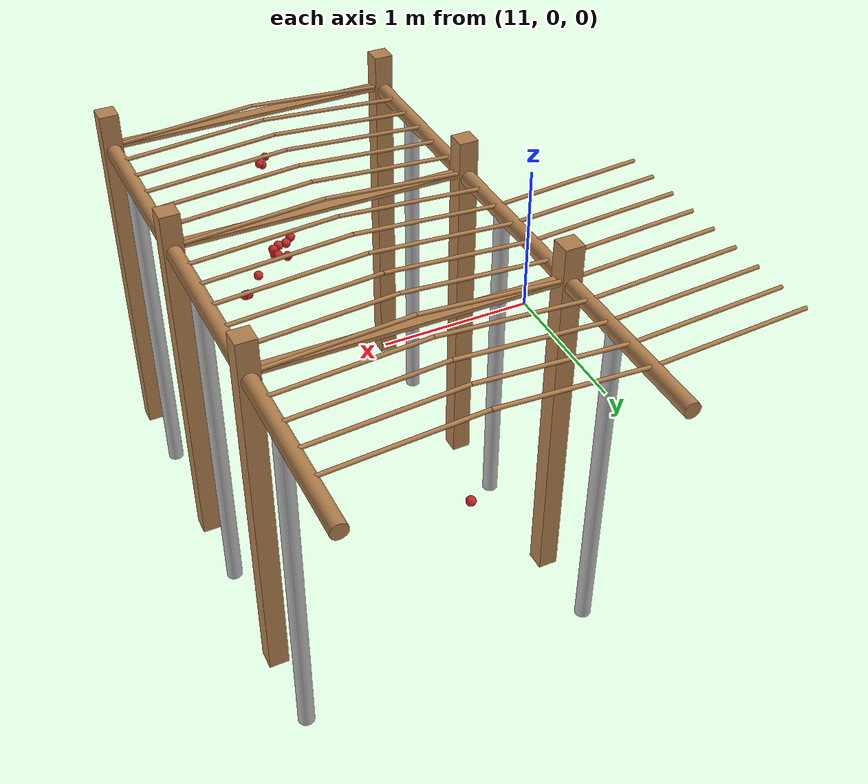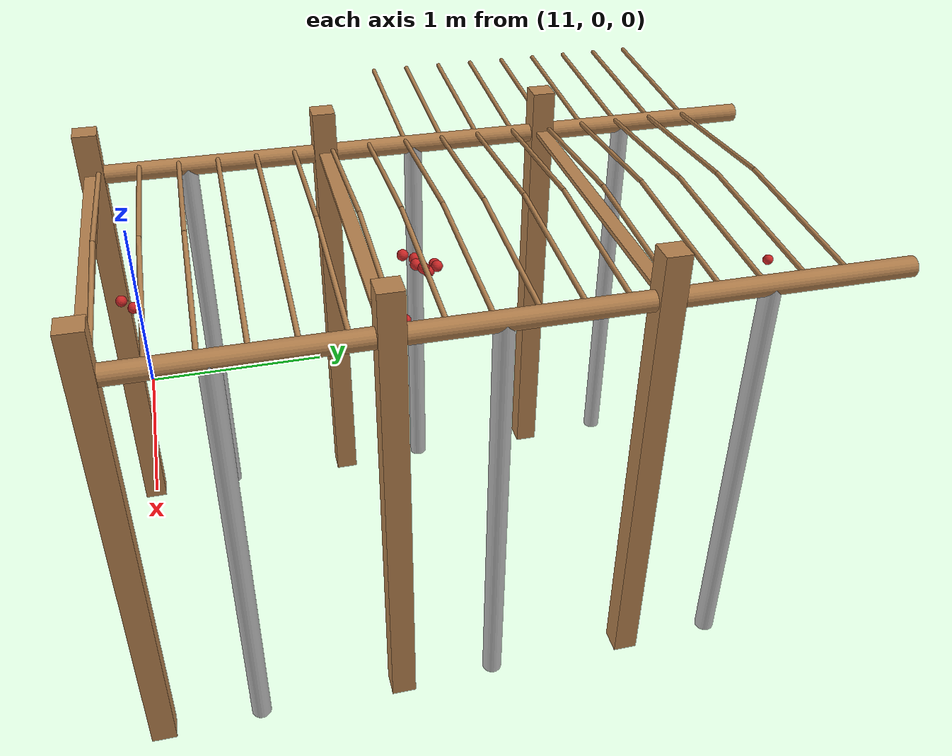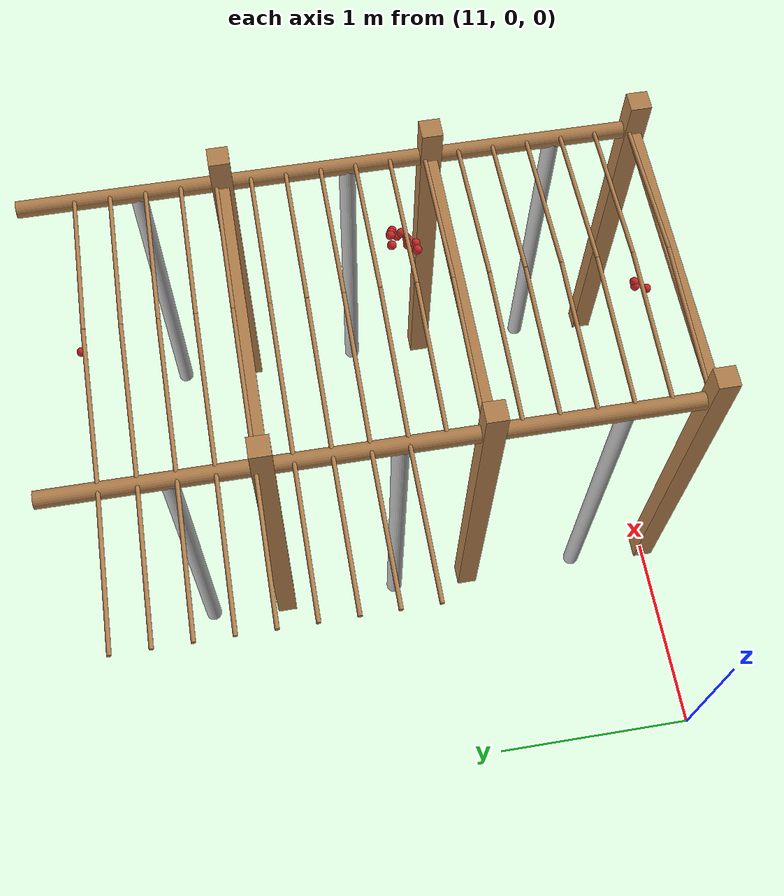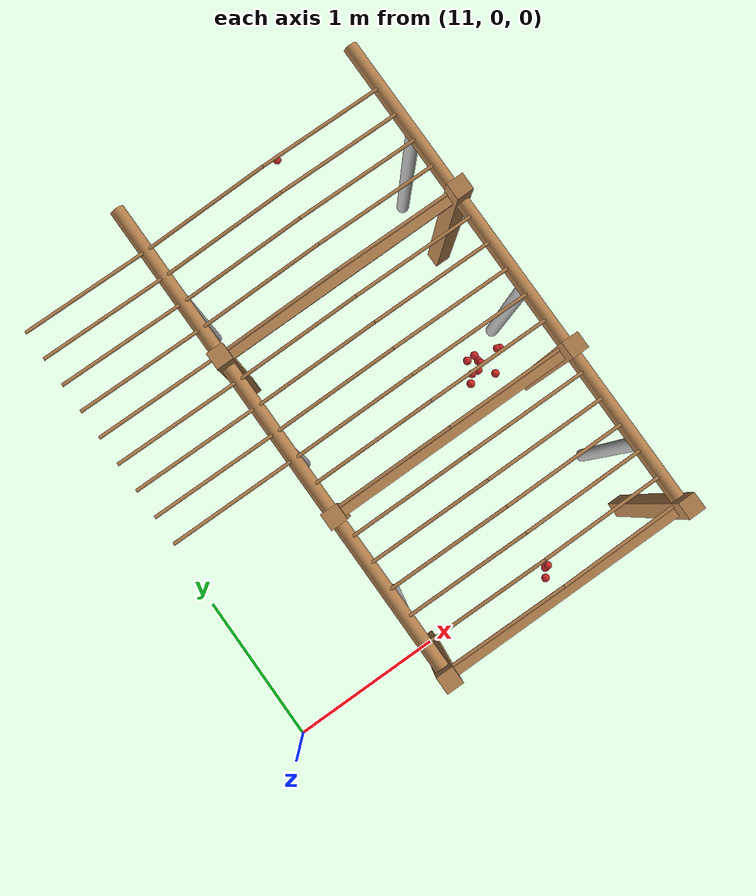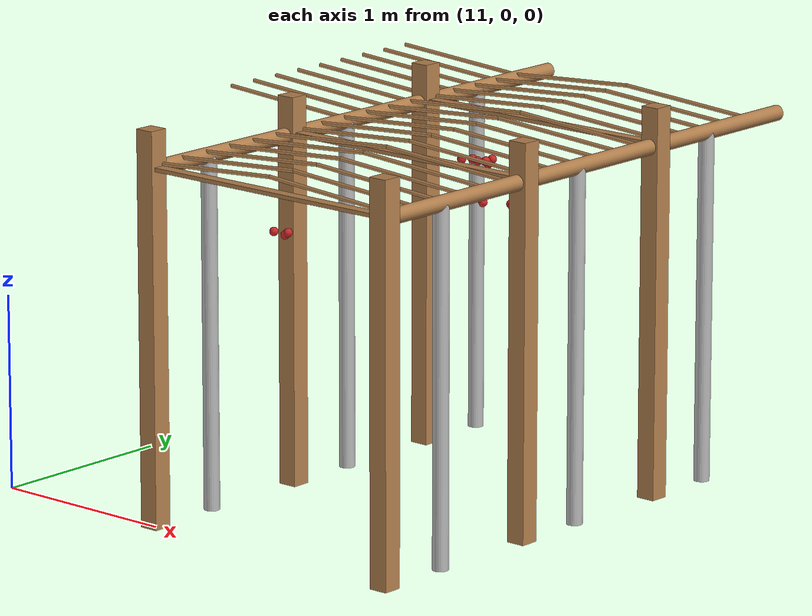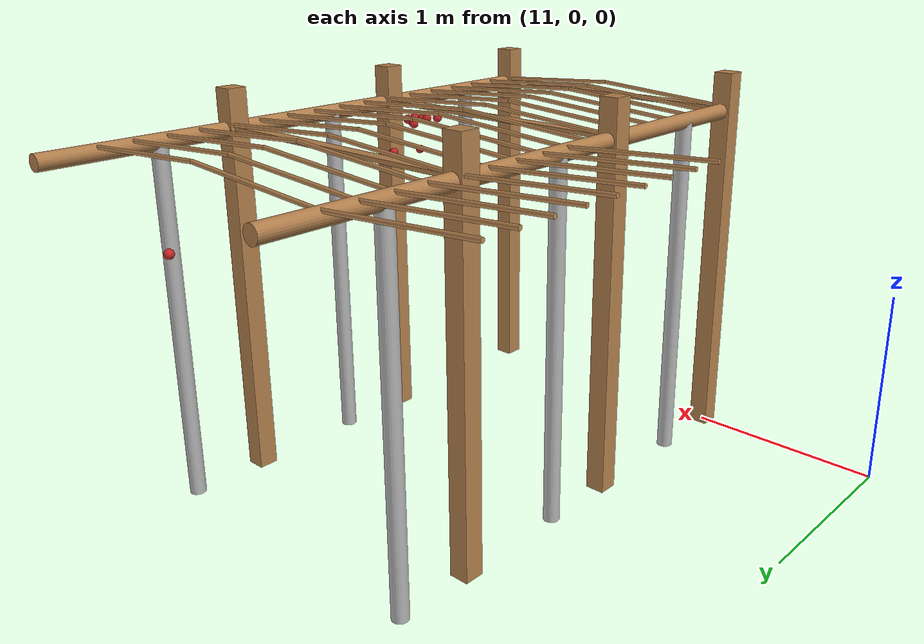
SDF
<sdf version="1.4">
 <model name="pergola">
  <include><name>post_88</name><pose>12.0 0.0 0 0 0 0</pose><uri>model://post</uri></include>
  <include><name>post_89</name><pose>12.0 1.0 0 0 0 0</pose><uri>model://post</uri></include>
  <include><name>post_90</name><pose>12.0 2.0 0 0 0 0</pose><uri>model://post</uri></include>
  <include><name>post_99</name><pose>13.5 0.0 0 0 0 0</pose><uri>model://post</uri></include>
  <include><name>post_100</name><pose>13.5 1.0 0 0 0 0</pose><uri>model://post</uri></include>
  <include><name>post_101</name><pose>13.5 2.0 0 0 0 0</pose><uri>model://post</uri></include>
  <link name="beam_88">
   <pose>12.75 0.0 1.81 0 0 0</pose>
   <collision name="collision"><geometry><box><size>1.5 0.06 0.02</size></box></geometry></collision>
   <visual name="visual">
    <geometry><box><size>1.5 0.06 0.02</size></box></geometry>
    <material><script><name>Gazebo/Wood</name></script></material>
   </visual>
   <inertial>
    <mass>5</mass>
    <inertia>
     <ixx>0.0016666666666666668</ixx>
     <ixy>0.0</ixy>
     <ixz>0.0</ixz>
     <iyy>0.9390000000000001</iyy>
     <iyz>0.0</iyz>
     <izz>0.9376666666666665</izz>
    </inertia>
   </inertial>
  </link>
  <link name="beam_89">
   <pose>12.75 1.0 1.81 0 0 0</pose>
   <collision name="collision"><geometry><box><size>1.5 0.06 0.02</size></box></geometry></collision>
   <visual name="visual">
    <geometry><box><size>1.5 0.06 0.02</size></box></geometry>
    <material><script><name>Gazebo/Wood</name></script></material>
   </visual>
   <inertial>
    <mass>5</mass>
    <inertia>
     <ixx>0.0016666666666666668</ixx>
     <ixy>0.0</ixy>
     <ixz>0.0</ixz>
     <iyy>0.9390000000000001</iyy>
     <iyz>0.0</iyz>
     <izz>0.9376666666666665</izz>
    </inertia>
   </inertial>
  </link>
  <link name="beam_90">
   <pose>12.75 2.0 1.81 0 0 0</pose>
   <collision name="collision"><geometry><box><size>1.5 0.06 0.02</size></box></geometry></collision>
   <visual name="visual">
    <geometry><box><size>1.5 0.06 0.02</size></box></geometry>
    <material><script><name>Gazebo/Wood</name></script></material>
   </visual>
   <inertial>
    <mass>5</mass>
    <inertia>
     <ixx>0.0016666666666666668</ixx>
     <ixy>0.0</ixy>
     <ixz>0.0</ixz>
     <iyy>0.9390000000000001</iyy>
     <iyz>0.0</iyz>
     <izz>0.9376666666666665</izz>
    </inertia>
   </inertial>
  </link>
  <include><name>tree_80</name><pose>12.0 0.4 0 0 0 0</pose><uri>model://tree_trunk</uri></include>
  <include><name>tree_81</name><pose>12.0 1.4 0 0 0 0</pose><uri>model://tree_trunk</uri></include>
  <include><name>tree_82</name><pose>12.0 2.4 0 0 0 0</pose><uri>model://tree_trunk</uri></include>
  <include><name>tree_90</name><pose>13.5 0.4 0 0 0 0</pose><uri>model://tree_trunk</uri></include>
  <include><name>tree_91</name><pose>13.5 1.4 0 0 0 0</pose><uri>model://tree_trunk</uri></include>
  <include><name>tree_92</name><pose>13.5 2.4 0 0 0 0</pose><uri>model://tree_trunk</uri></include>
  <link name="baseBranch_80">
   <pose>12.0 0.5 1.8 1.5707963267948966 0 0</pose>
   <collision name="collision">
    <geometry><cylinder><radius>0.04</radius><length>0.94</length></cylinder></geometry>
   </collision>
   <visual name="visual">
    <geometry><cylinder><radius>0.04</radius><length>0.94</length></cylinder></geometry>
    <material><script><name>Gazebo/WoodFloor</name></script></material>
   </visual>
   <inertial>
    <mass>10</mass>
    <inertia>
     <ixx>0.7403333333333334</ixx>
     <ixy>0.0</ixy>
     <ixz>0.0</ixz>
     <iyy>0.7403333333333334</iyy>
     <iyz>0.0</iyz>
     <izz>0.008</izz>
    </inertia>
   </inertial>
  </link>
  <link name="baseBranch_81">
   <pose>12.0 1.5 1.8 1.5707963267948966 0 0</pose>
   <collision name="collision">
    <geometry><cylinder><radius>0.04</radius><length>0.94</length></cylinder></geometry>
   </collision>
   <visual name="visual">
    <geometry><cylinder><radius>0.04</radius><length>0.94</length></cylinder></geometry>
    <material><script><name>Gazebo/WoodFloor</name></script></material>
   </visual>
   <inertial>
    <mass>10</mass>
    <inertia>
     <ixx>0.7403333333333334</ixx>
     <ixy>0.0</ixy>
     <ixz>0.0</ixz>
     <iyy>0.7403333333333334</iyy>
     <iyz>0.0</iyz>
     <izz>0.008</izz>
    </inertia>
   </inertial>
  </link>
  <link name="baseBranch_82">
   <pose>12.0 2.5 1.8 1.5707963267948966 0 0</pose>
   <collision name="collision">
    <geometry><cylinder><radius>0.04</radius><length>0.94</length></cylinder></geometry>
   </collision>
   <visual name="visual">
    <geometry><cylinder><radius>0.04</radius><length>0.94</length></cylinder></geometry>
    <material><script><name>Gazebo/WoodFloor</name></script></material>
   </visual>
   <inertial>
    <mass>10</mass>
    <inertia>
     <ixx>0.7403333333333334</ixx>
     <ixy>0.0</ixy>
     <ixz>0.0</ixz>
     <iyy>0.7403333333333334</iyy>
     <iyz>0.0</iyz>
     <izz>0.008</izz>
    </inertia>
   </inertial>
  </link>
  <link name="baseBranch_90">
   <pose>13.5 0.5 1.8 1.5707963267948966 0 0</pose>
   <collision name="collision">
    <geometry><cylinder><radius>0.04</radius><length>0.94</length></cylinder></geometry>
   </collision>
   <visual name="visual">
    <geometry><cylinder><radius>0.04</radius><length>0.94</length></cylinder></geometry>
    <material><script><name>Gazebo/WoodFloor</name></script></material>
   </visual>
   <inertial>
    <mass>10</mass>
    <inertia>
     <ixx>0.7403333333333334</ixx>
     <ixy>0.0</ixy>
     <ixz>0.0</ixz>
     <iyy>0.7403333333333334</iyy>
     <iyz>0.0</iyz>
     <izz>0.008</izz>
    </inertia>
   </inertial>
  </link>
  <link name="baseBranch_91">
   <pose>13.5 1.5 1.8 1.5707963267948966 0 0</pose>
   <collision name="collision">
    <geometry><cylinder><radius>0.04</radius><length>0.94</length></cylinder></geometry>
   </collision>
   <visual name="visual">
    <geometry><cylinder><radius>0.04</radius><length>0.94</length></cylinder></geometry>
    <material><script><name>Gazebo/WoodFloor</name></script></material>
   </visual>
   <inertial>
    <mass>10</mass>
    <inertia>
     <ixx>0.7403333333333334</ixx>
     <ixy>0.0</ixy>
     <ixz>0.0</ixz>
     <iyy>0.7403333333333334</iyy>
     <iyz>0.0</iyz>
     <izz>0.008</izz>
    </inertia>
   </inertial>
  </link>
  <link name="baseBranch_92">
   <pose>13.5 2.5 1.8 1.5707963267948966 0 0</pose>
   <collision name="collision">
    <geometry><cylinder><radius>0.04</radius><length>0.94</length></cylinder></geometry>
   </collision>
   <visual name="visual">
    <geometry><cylinder><radius>0.04</radius><length>0.94</length></cylinder></geometry>
    <material><script><name>Gazebo/WoodFloor</name></script></material>
   </visual>
   <inertial>
    <mass>10</mass>
    <inertia>
     <ixx>0.7403333333333334</ixx>
     <ixy>0.0</ixy>
     <ixz>0.0</ixz>
     <iyy>0.7403333333333334</iyy>
     <iyz>0.0</iyz>
     <izz>0.008</izz>
    </inertia>
   </inertial>
  </link>
  <link name="vine_857">
   <pose>11.625 1.3633333333333333 1.85 0 -1.5042281630190728 0</pose>
   <collision name="collision">
    <geometry><cylinder><radius>0.01</radius><length>0.7516648189186453</length></cylinder></geometry>
   </collision>
   <visual name="visual">
    <geometry><cylinder><radius>0.01</radius><length>0.7516648189186453</length></cylinder></geometry>
    <material><script><name>Gazebo/WoodFloor</name></script></material>
   </visual>
   <inertial>
    <mass>5</mass>
    <inertia>
     <ixx>0.23554166666666657</ixx>
     <ixy>0.0</ixy>
     <ixz>0.0</ixz>
     <iyy>0.23554166666666657</iyy>
     <iyz>0.0</iyz>
     <izz>0.00025</izz>
    </inertia>
   </inertial>
  </link>
  <link name="vine_859">
   <pose>11.625 1.53 1.85 0 -1.5042281630190728 0</pose>
   <collision name="collision">
    <geometry><cylinder><radius>0.01</radius><length>0.7516648189186453</length></cylinder></geometry>
   </collision>
   <visual name="visual">
    <geometry><cylinder><radius>0.01</radius><length>0.7516648189186453</length></cylinder></geometry>
    <material><script><name>Gazebo/WoodFloor</name></script></material>
   </visual>
   <inertial>
    <mass>5</mass>
    <inertia>
     <ixx>0.23554166666666657</ixx>
     <ixy>0.0</ixy>
     <ixz>0.0</ixz>
     <iyy>0.23554166666666657</iyy>
     <iyz>0.0</iyz>
     <izz>0.00025</izz>
    </inertia>
   </inertial>
  </link>
  <link name="vine_861">
   <pose>11.625 1.6966666666666665 1.85 0 -1.5042281630190728 0</pose>
   <collision name="collision">
    <geometry><cylinder><radius>0.01</radius><length>0.7516648189186453</length></cylinder></geometry>
   </collision>
   <visual name="visual">
    <geometry><cylinder><radius>0.01</radius><length>0.7516648189186453</length></cylinder></geometry>
    <material><script><name>Gazebo/WoodFloor</name></script></material>
   </visual>
   <inertial>
    <mass>5</mass>
    <inertia>
     <ixx>0.23554166666666657</ixx>
     <ixy>0.0</ixy>
     <ixz>0.0</ixz>
     <iyy>0.23554166666666657</iyy>
     <iyz>0.0</iyz>
     <izz>0.00025</izz>
    </inertia>
   </inertial>
  </link>
  <link name="vine_863">
   <pose>11.625 1.8633333333333333 1.85 0 -1.5042281630190728 0</pose>
   <collision name="collision">
    <geometry><cylinder><radius>0.01</radius><length>0.7516648189186453</length></cylinder></geometry>
   </collision>
   <visual name="visual">
    <geometry><cylinder><radius>0.01</radius><length>0.7516648189186453</length></cylinder></geometry>
    <material><script><name>Gazebo/WoodFloor</name></script></material>
   </visual>
   <inertial>
    <mass>5</mass>
    <inertia>
     <ixx>0.23554166666666657</ixx>
     <ixy>0.0</ixy>
     <ixz>0.0</ixz>
     <iyy>0.23554166666666657</iyy>
     <iyz>0.0</iyz>
     <izz>0.00025</izz>
    </inertia>
   </inertial>
  </link>
  <link name="vine_865">
   <pose>11.625 2.03 1.85 0 -1.5042281630190728 0</pose>
   <collision name="collision">
    <geometry><cylinder><radius>0.01</radius><length>0.7516648189186453</length></cylinder></geometry>
   </collision>
   <visual name="visual">
    <geometry><cylinder><radius>0.01</radius><length>0.7516648189186453</length></cylinder></geometry>
    <material><script><name>Gazebo/WoodFloor</name></script></material>
   </visual>
   <inertial>
    <mass>5</mass>
    <inertia>
     <ixx>0.23554166666666657</ixx>
     <ixy>0.0</ixy>
     <ixz>0.0</ixz>
     <iyy>0.23554166666666657</iyy>
     <iyz>0.0</iyz>
     <izz>0.00025</izz>
    </inertia>
   </inertial>
  </link>
  <link name="vine_867">
   <pose>11.625 2.1966666666666663 1.85 0 -1.5042281630190728 0</pose>
   <collision name="collision">
    <geometry><cylinder><radius>0.01</radius><length>0.7516648189186453</length></cylinder></geometry>
   </collision>
   <visual name="visual">
    <geometry><cylinder><radius>0.01</radius><length>0.7516648189186453</length></cylinder></geometry>
    <material><script><name>Gazebo/WoodFloor</name></script></material>
   </visual>
   <inertial>
    <mass>5</mass>
    <inertia>
     <ixx>0.23554166666666657</ixx>
     <ixy>0.0</ixy>
     <ixz>0.0</ixz>
     <iyy>0.23554166666666657</iyy>
     <iyz>0.0</iyz>
     <izz>0.00025</izz>
    </inertia>
   </inertial>
  </link>
  <link name="vine_869">
   <pose>11.625 2.363333333333333 1.85 0 -1.5042281630190728 0</pose>
   <collision name="collision">
    <geometry><cylinder><radius>0.01</radius><length>0.7516648189186453</length></cylinder></geometry>
   </collision>
   <visual name="visual">
    <geometry><cylinder><radius>0.01</radius><length>0.7516648189186453</length></cylinder></geometry>
    <material><script><name>Gazebo/WoodFloor</name></script></material>
   </visual>
   <inertial>
    <mass>5</mass>
    <inertia>
     <ixx>0.23554166666666657</ixx>
     <ixy>0.0</ixy>
     <ixz>0.0</ixz>
     <iyy>0.23554166666666657</iyy>
     <iyz>0.0</iyz>
     <izz>0.00025</izz>
    </inertia>
   </inertial>
  </link>
  <link name="vine_871">
   <pose>11.625 2.53 1.85 0 -1.5042281630190728 0</pose>
   <collision name="collision">
    <geometry><cylinder><radius>0.01</radius><length>0.7516648189186453</length></cylinder></geometry>
   </collision>
   <visual name="visual">
    <geometry><cylinder><radius>0.01</radius><length>0.7516648189186453</length></cylinder></geometry>
    <material><script><name>Gazebo/WoodFloor</name></script></material>
   </visual>
   <inertial>
    <mass>5</mass>
    <inertia>
     <ixx>0.23554166666666657</ixx>
     <ixy>0.0</ixy>
     <ixz>0.0</ixz>
     <iyy>0.23554166666666657</iyy>
     <iyz>0.0</iyz>
     <izz>0.00025</izz>
    </inertia>
   </inertial>
  </link>
  <link name="vine_873">
   <pose>11.625 2.6966666666666663 1.85 0 -1.5042281630190728 0</pose>
   <collision name="collision">
    <geometry><cylinder><radius>0.01</radius><length>0.7516648189186453</length></cylinder></geometry>
   </collision>
   <visual name="visual">
    <geometry><cylinder><radius>0.01</radius><length>0.7516648189186453</length></cylinder></geometry>
    <material><script><name>Gazebo/WoodFloor</name></script></material>
   </visual>
   <inertial>
    <mass>5</mass>
    <inertia>
     <ixx>0.23554166666666657</ixx>
     <ixy>0.0</ixy>
     <ixz>0.0</ixz>
     <iyy>0.23554166666666657</iyy>
     <iyz>0.0</iyz>
     <izz>0.00025</izz>
    </inertia>
   </inertial>
  </link>
  <link name="vine_960">
   <pose>12.375 0.03 1.85 0 1.5042281630190728 0</pose>
   <collision name="collision">
    <geometry><cylinder><radius>0.01</radius><length>0.7516648189186453</length></cylinder></geometry>
   </collision>
   <visual name="visual">
    <geometry><cylinder><radius>0.01</radius><length>0.7516648189186453</length></cylinder></geometry>
    <material><script><name>Gazebo/WoodFloor</name></script></material>
   </visual>
   <inertial>
    <mass>5</mass>
    <inertia>
     <ixx>0.23554166666666657</ixx>
     <ixy>0.0</ixy>
     <ixz>0.0</ixz>
     <iyy>0.23554166666666657</iyy>
     <iyz>0.0</iyz>
     <izz>0.00025</izz>
    </inertia>
   </inertial>
  </link>
  <link name="vine_961">
   <pose>13.125 0.03 1.85 0 -1.5042281630190728 0</pose>
   <collision name="collision">
    <geometry><cylinder><radius>0.01</radius><length>0.7516648189186453</length></cylinder></geometry>
   </collision>
   <visual name="visual">
    <geometry><cylinder><radius>0.01</radius><length>0.7516648189186453</length></cylinder></geometry>
    <material><script><name>Gazebo/WoodFloor</name></script></material>
   </visual>
   <inertial>
    <mass>5</mass>
    <inertia>
     <ixx>0.23554166666666657</ixx>
     <ixy>0.0</ixy>
     <ixz>0.0</ixz>
     <iyy>0.23554166666666657</iyy>
     <iyz>0.0</iyz>
     <izz>0.00025</izz>
    </inertia>
   </inertial>
  </link>
  <link name="vine_962">
   <pose>12.375 0.19666666666666666 1.85 0 1.5042281630190728 0</pose>
   <collision name="collision">
    <geometry><cylinder><radius>0.01</radius><length>0.7516648189186453</length></cylinder></geometry>
   </collision>
   <visual name="visual">
    <geometry><cylinder><radius>0.01</radius><length>0.7516648189186453</length></cylinder></geometry>
    <material><script><name>Gazebo/WoodFloor</name></script></material>
   </visual>
   <inertial>
    <mass>5</mass>
    <inertia>
     <ixx>0.23554166666666657</ixx>
     <ixy>0.0</ixy>
     <ixz>0.0</ixz>
     <iyy>0.23554166666666657</iyy>
     <iyz>0.0</iyz>
     <izz>0.00025</izz>
    </inertia>
   </inertial>
  </link>
  <link name="vine_963">
   <pose>13.125 0.19666666666666666 1.85 0 -1.5042281630190728 0</pose>
   <collision name="collision">
    <geometry><cylinder><radius>0.01</radius><length>0.7516648189186453</length></cylinder></geometry>
   </collision>
   <visual name="visual">
    <geometry><cylinder><radius>0.01</radius><length>0.7516648189186453</length></cylinder></geometry>
    <material><script><name>Gazebo/WoodFloor</name></script></material>
   </visual>
   <inertial>
    <mass>5</mass>
    <inertia>
     <ixx>0.23554166666666657</ixx>
     <ixy>0.0</ixy>
     <ixz>0.0</ixz>
     <iyy>0.23554166666666657</iyy>
     <iyz>0.0</iyz>
     <izz>0.00025</izz>
    </inertia>
   </inertial>
  </link>
  <link name="vine_964">
   <pose>12.375 0.3633333333333333 1.85 0 1.5042281630190728 0</pose>
   <collision name="collision">
    <geometry><cylinder><radius>0.01</radius><length>0.7516648189186453</length></cylinder></geometry>
   </collision>
   <visual name="visual">
    <geometry><cylinder><radius>0.01</radius><length>0.7516648189186453</length></cylinder></geometry>
    <material><script><name>Gazebo/WoodFloor</name></script></material>
   </visual>
   <inertial>
    <mass>5</mass>
    <inertia>
     <ixx>0.23554166666666657</ixx>
     <ixy>0.0</ixy>
     <ixz>0.0</ixz>
     <iyy>0.23554166666666657</iyy>
     <iyz>0.0</iyz>
     <izz>0.00025</izz>
    </inertia>
   </inertial>
  </link>
  <link name="vine_965">
   <pose>13.125 0.3633333333333333 1.85 0 -1.5042281630190728 0</pose>
   <collision name="collision">
    <geometry><cylinder><radius>0.01</radius><length>0.7516648189186453</length></cylinder></geometry>
   </collision>
   <visual name="visual">
    <geometry><cylinder><radius>0.01</radius><length>0.7516648189186453</length></cylinder></geometry>
    <material><script><name>Gazebo/WoodFloor</name></script></material>
   </visual>
   <inertial>
    <mass>5</mass>
    <inertia>
     <ixx>0.23554166666666657</ixx>
     <ixy>0.0</ixy>
     <ixz>0.0</ixz>
     <iyy>0.23554166666666657</iyy>
     <iyz>0.0</iyz>
     <izz>0.00025</izz>
    </inertia>
   </inertial>
  </link>
  <link name="vine_966">
   <pose>12.375 0.53 1.85 0 1.5042281630190728 0</pose>
   <collision name="collision">
    <geometry><cylinder><radius>0.01</radius><length>0.7516648189186453</length></cylinder></geometry>
   </collision>
   <visual name="visual">
    <geometry><cylinder><radius>0.01</radius><length>0.7516648189186453</length></cylinder></geometry>
    <material><script><name>Gazebo/WoodFloor</name></script></material>
   </visual>
   <inertial>
    <mass>5</mass>
    <inertia>
     <ixx>0.23554166666666657</ixx>
     <ixy>0.0</ixy>
     <ixz>0.0</ixz>
     <iyy>0.23554166666666657</iyy>
     <iyz>0.0</iyz>
     <izz>0.00025</izz>
    </inertia>
   </inertial>
  </link>
  <link name="vine_967">
   <pose>13.125 0.53 1.85 0 -1.5042281630190728 0</pose>
   <collision name="collision">
    <geometry><cylinder><radius>0.01</radius><length>0.7516648189186453</length></cylinder></geometry>
   </collision>
   <visual name="visual">
    <geometry><cylinder><radius>0.01</radius><length>0.7516648189186453</length></cylinder></geometry>
    <material><script><name>Gazebo/WoodFloor</name></script></material>
   </visual>
   <inertial>
    <mass>5</mass>
    <inertia>
     <ixx>0.23554166666666657</ixx>
     <ixy>0.0</ixy>
     <ixz>0.0</ixz>
     <iyy>0.23554166666666657</iyy>
     <iyz>0.0</iyz>
     <izz>0.00025</izz>
    </inertia>
   </inertial>
  </link>
  <link name="vine_968">
   <pose>12.375 0.6966666666666667 1.85 0 1.5042281630190728 0</pose>
   <collision name="collision">
    <geometry><cylinder><radius>0.01</radius><length>0.7516648189186453</length></cylinder></geometry>
   </collision>
   <visual name="visual">
    <geometry><cylinder><radius>0.01</radius><length>0.7516648189186453</length></cylinder></geometry>
    <material><script><name>Gazebo/WoodFloor</name></script></material>
   </visual>
   <inertial>
    <mass>5</mass>
    <inertia>
     <ixx>0.23554166666666657</ixx>
     <ixy>0.0</ixy>
     <ixz>0.0</ixz>
     <iyy>0.23554166666666657</iyy>
     <iyz>0.0</iyz>
     <izz>0.00025</izz>
    </inertia>
   </inertial>
  </link>
  <link name="vine_969">
   <pose>13.125 0.6966666666666667 1.85 0 -1.5042281630190728 0</pose>
   <collision name="collision">
    <geometry><cylinder><radius>0.01</radius><length>0.7516648189186453</length></cylinder></geometry>
   </collision>
   <visual name="visual">
    <geometry><cylinder><radius>0.01</radius><length>0.7516648189186453</length></cylinder></geometry>
    <material><script><name>Gazebo/WoodFloor</name></script></material>
   </visual>
   <inertial>
    <mass>5</mass>
    <inertia>
     <ixx>0.23554166666666657</ixx>
     <ixy>0.0</ixy>
     <ixz>0.0</ixz>
     <iyy>0.23554166666666657</iyy>
     <iyz>0.0</iyz>
     <izz>0.00025</izz>
    </inertia>
   </inertial>
  </link>
  <link name="vine_970">
   <pose>12.375 0.8633333333333333 1.85 0 1.5042281630190728 0</pose>
   <collision name="collision">
    <geometry><cylinder><radius>0.01</radius><length>0.7516648189186453</length></cylinder></geometry>
   </collision>
   <visual name="visual">
    <geometry><cylinder><radius>0.01</radius><length>0.7516648189186453</length></cylinder></geometry>
    <material><script><name>Gazebo/WoodFloor</name></script></material>
   </visual>
   <inertial>
    <mass>5</mass>
    <inertia>
     <ixx>0.23554166666666657</ixx>
     <ixy>0.0</ixy>
     <ixz>0.0</ixz>
     <iyy>0.23554166666666657</iyy>
     <iyz>0.0</iyz>
     <izz>0.00025</izz>
    </inertia>
   </inertial>
  </link>
  <link name="vine_971">
   <pose>13.125 0.8633333333333333 1.85 0 -1.5042281630190728 0</pose>
   <collision name="collision">
    <geometry><cylinder><radius>0.01</radius><length>0.7516648189186453</length></cylinder></geometry>
   </collision>
   <visual name="visual">
    <geometry><cylinder><radius>0.01</radius><length>0.7516648189186453</length></cylinder></geometry>
    <material><script><name>Gazebo/WoodFloor</name></script></material>
   </visual>
   <inertial>
    <mass>5</mass>
    <inertia>
     <ixx>0.23554166666666657</ixx>
     <ixy>0.0</ixy>
     <ixz>0.0</ixz>
     <iyy>0.23554166666666657</iyy>
     <iyz>0.0</iyz>
     <izz>0.00025</izz>
    </inertia>
   </inertial>
  </link>
  <link name="vine_972">
   <pose>12.375 1.03 1.85 0 1.5042281630190728 0</pose>
   <collision name="collision">
    <geometry><cylinder><radius>0.01</radius><length>0.7516648189186453</length></cylinder></geometry>
   </collision>
   <visual name="visual">
    <geometry><cylinder><radius>0.01</radius><length>0.7516648189186453</length></cylinder></geometry>
    <material><script><name>Gazebo/WoodFloor</name></script></material>
   </visual>
   <inertial>
    <mass>5</mass>
    <inertia>
     <ixx>0.23554166666666657</ixx>
     <ixy>0.0</ixy>
     <ixz>0.0</ixz>
     <iyy>0.23554166666666657</iyy>
     <iyz>0.0</iyz>
     <izz>0.00025</izz>
    </inertia>
   </inertial>
  </link>
  <link name="vine_973">
   <pose>13.125 1.03 1.85 0 -1.5042281630190728 0</pose>
   <collision name="collision">
    <geometry><cylinder><radius>0.01</radius><length>0.7516648189186453</length></cylinder></geometry>
   </collision>
   <visual name="visual">
    <geometry><cylinder><radius>0.01</radius><length>0.7516648189186453</length></cylinder></geometry>
    <material><script><name>Gazebo/WoodFloor</name></script></material>
   </visual>
   <inertial>
    <mass>5</mass>
    <inertia>
     <ixx>0.23554166666666657</ixx>
     <ixy>0.0</ixy>
     <ixz>0.0</ixz>
     <iyy>0.23554166666666657</iyy>
     <iyz>0.0</iyz>
     <izz>0.00025</izz>
    </inertia>
   </inertial>
  </link>
  <link name="vine_974">
   <pose>12.375 1.1966666666666665 1.85 0 1.5042281630190728 0</pose>
   <collision name="collision">
    <geometry><cylinder><radius>0.01</radius><length>0.7516648189186453</length></cylinder></geometry>
   </collision>
   <visual name="visual">
    <geometry><cylinder><radius>0.01</radius><length>0.7516648189186453</length></cylinder></geometry>
    <material><script><name>Gazebo/WoodFloor</name></script></material>
   </visual>
   <inertial>
    <mass>5</mass>
    <inertia>
     <ixx>0.23554166666666657</ixx>
     <ixy>0.0</ixy>
     <ixz>0.0</ixz>
     <iyy>0.23554166666666657</iyy>
     <iyz>0.0</iyz>
     <izz>0.00025</izz>
    </inertia>
   </inertial>
  </link>
  <link name="vine_975">
   <pose>13.125 1.1966666666666665 1.85 0 -1.5042281630190728 0</pose>
   <collision name="collision">
    <geometry><cylinder><radius>0.01</radius><length>0.7516648189186453</length></cylinder></geometry>
   </collision>
   <visual name="visual">
    <geometry><cylinder><radius>0.01</radius><length>0.7516648189186453</length></cylinder></geometry>
    <material><script><name>Gazebo/WoodFloor</name></script></material>
   </visual>
   <inertial>
    <mass>5</mass>
    <inertia>
     <ixx>0.23554166666666657</ixx>
     <ixy>0.0</ixy>
     <ixz>0.0</ixz>
     <iyy>0.23554166666666657</iyy>
     <iyz>0.0</iyz>
     <izz>0.00025</izz>
    </inertia>
   </inertial>
  </link>
  <link name="vine_976">
   <pose>12.375 1.3633333333333333 1.85 0 1.5042281630190728 0</pose>
   <collision name="collision">
    <geometry><cylinder><radius>0.01</radius><length>0.7516648189186453</length></cylinder></geometry>
   </collision>
   <visual name="visual">
    <geometry><cylinder><radius>0.01</radius><length>0.7516648189186453</length></cylinder></geometry>
    <material><script><name>Gazebo/WoodFloor</name></script></material>
   </visual>
   <inertial>
    <mass>5</mass>
    <inertia>
     <ixx>0.23554166666666657</ixx>
     <ixy>0.0</ixy>
     <ixz>0.0</ixz>
     <iyy>0.23554166666666657</iyy>
     <iyz>0.0</iyz>
     <izz>0.00025</izz>
    </inertia>
   </inertial>
  </link>
  <link name="vine_977">
   <pose>13.125 1.3633333333333333 1.85 0 -1.5042281630190728 0</pose>
   <collision name="collision">
    <geometry><cylinder><radius>0.01</radius><length>0.7516648189186453</length></cylinder></geometry>
   </collision>
   <visual name="visual">
    <geometry><cylinder><radius>0.01</radius><length>0.7516648189186453</length></cylinder></geometry>
    <material><script><name>Gazebo/WoodFloor</name></script></material>
   </visual>
   <inertial>
    <mass>5</mass>
    <inertia>
     <ixx>0.23554166666666657</ixx>
     <ixy>0.0</ixy>
     <ixz>0.0</ixz>
     <iyy>0.23554166666666657</iyy>
     <iyz>0.0</iyz>
     <izz>0.00025</izz>
    </inertia>
   </inertial>
  </link>
  <link name="vine_978">
   <pose>12.375 1.53 1.85 0 1.5042281630190728 0</pose>
   <collision name="collision">
    <geometry><cylinder><radius>0.01</radius><length>0.7516648189186453</length></cylinder></geometry>
   </collision>
   <visual name="visual">
    <geometry><cylinder><radius>0.01</radius><length>0.7516648189186453</length></cylinder></geometry>
    <material><script><name>Gazebo/WoodFloor</name></script></material>
   </visual>
   <inertial>
    <mass>5</mass>
    <inertia>
     <ixx>0.23554166666666657</ixx>
     <ixy>0.0</ixy>
     <ixz>0.0</ixz>
     <iyy>0.23554166666666657</iyy>
     <iyz>0.0</iyz>
     <izz>0.00025</izz>
    </inertia>
   </inertial>
  </link>
  <link name="vine_979">
   <pose>13.125 1.53 1.85 0 -1.5042281630190728 0</pose>
   <collision name="collision">
    <geometry><cylinder><radius>0.01</radius><length>0.7516648189186453</length></cylinder></geometry>
   </collision>
   <visual name="visual">
    <geometry><cylinder><radius>0.01</radius><length>0.7516648189186453</length></cylinder></geometry>
    <material><script><name>Gazebo/WoodFloor</name></script></material>
   </visual>
   <inertial>
    <mass>5</mass>
    <inertia>
     <ixx>0.23554166666666657</ixx>
     <ixy>0.0</ixy>
     <ixz>0.0</ixz>
     <iyy>0.23554166666666657</iyy>
     <iyz>0.0</iyz>
     <izz>0.00025</izz>
    </inertia>
   </inertial>
  </link>
  <link name="vine_980">
   <pose>12.375 1.6966666666666665 1.85 0 1.5042281630190728 0</pose>
   <collision name="collision">
    <geometry><cylinder><radius>0.01</radius><length>0.7516648189186453</length></cylinder></geometry>
   </collision>
   <visual name="visual">
    <geometry><cylinder><radius>0.01</radius><length>0.7516648189186453</length></cylinder></geometry>
    <material><script><name>Gazebo/WoodFloor</name></script></material>
   </visual>
   <inertial>
    <mass>5</mass>
    <inertia>
     <ixx>0.23554166666666657</ixx>
     <ixy>0.0</ixy>
     <ixz>0.0</ixz>
     <iyy>0.23554166666666657</iyy>
     <iyz>0.0</iyz>
     <izz>0.00025</izz>
    </inertia>
   </inertial>
  </link>
  <link name="vine_981">
   <pose>13.125 1.6966666666666665 1.85 0 -1.5042281630190728 0</pose>
   <collision name="collision">
    <geometry><cylinder><radius>0.01</radius><length>0.7516648189186453</length></cylinder></geometry>
   </collision>
   <visual name="visual">
    <geometry><cylinder><radius>0.01</radius><length>0.7516648189186453</length></cylinder></geometry>
    <material><script><name>Gazebo/WoodFloor</name></script></material>
   </visual>
   <inertial>
    <mass>5</mass>
    <inertia>
     <ixx>0.23554166666666657</ixx>
     <ixy>0.0</ixy>
     <ixz>0.0</ixz>
     <iyy>0.23554166666666657</iyy>
     <iyz>0.0</iyz>
     <izz>0.00025</izz>
    </inertia>
   </inertial>
  </link>
  <link name="vine_982">
   <pose>12.375 1.8633333333333333 1.85 0 1.5042281630190728 0</pose>
   <collision name="collision">
    <geometry><cylinder><radius>0.01</radius><length>0.7516648189186453</length></cylinder></geometry>
   </collision>
   <visual name="visual">
    <geometry><cylinder><radius>0.01</radius><length>0.7516648189186453</length></cylinder></geometry>
    <material><script><name>Gazebo/WoodFloor</name></script></material>
   </visual>
   <inertial>
    <mass>5</mass>
    <inertia>
     <ixx>0.23554166666666657</ixx>
     <ixy>0.0</ixy>
     <ixz>0.0</ixz>
     <iyy>0.23554166666666657</iyy>
     <iyz>0.0</iyz>
     <izz>0.00025</izz>
    </inertia>
   </inertial>
  </link>
  <link name="vine_983">
   <pose>13.125 1.8633333333333333 1.85 0 -1.5042281630190728 0</pose>
   <collision name="collision">
    <geometry><cylinder><radius>0.01</radius><length>0.7516648189186453</length></cylinder></geometry>
   </collision>
   <visual name="visual">
    <geometry><cylinder><radius>0.01</radius><length>0.7516648189186453</length></cylinder></geometry>
    <material><script><name>Gazebo/WoodFloor</name></script></material>
   </visual>
   <inertial>
    <mass>5</mass>
    <inertia>
     <ixx>0.23554166666666657</ixx>
     <ixy>0.0</ixy>
     <ixz>0.0</ixz>
     <iyy>0.23554166666666657</iyy>
     <iyz>0.0</iyz>
     <izz>0.00025</izz>
    </inertia>
   </inertial>
  </link>
  <link name="vine_984">
   <pose>12.375 2.03 1.85 0 1.5042281630190728 0</pose>
   <collision name="collision">
    <geometry><cylinder><radius>0.01</radius><length>0.7516648189186453</length></cylinder></geometry>
   </collision>
   <visual name="visual">
    <geometry><cylinder><radius>0.01</radius><length>0.7516648189186453</length></cylinder></geometry>
    <material><script><name>Gazebo/WoodFloor</name></script></material>
   </visual>
   <inertial>
    <mass>5</mass>
    <inertia>
     <ixx>0.23554166666666657</ixx>
     <ixy>0.0</ixy>
     <ixz>0.0</ixz>
     <iyy>0.23554166666666657</iyy>
     <iyz>0.0</iyz>
     <izz>0.00025</izz>
    </inertia>
   </inertial>
  </link>
  <link name="vine_985">
   <pose>13.125 2.03 1.85 0 -1.5042281630190728 0</pose>
   <collision name="collision">
    <geometry><cylinder><radius>0.01</radius><length>0.7516648189186453</length></cylinder></geometry>
   </collision>
   <visual name="visual">
    <geometry><cylinder><radius>0.01</radius><length>0.7516648189186453</length></cylinder></geometry>
    <material><script><name>Gazebo/WoodFloor</name></script></material>
   </visual>
   <inertial>
    <mass>5</mass>
    <inertia>
     <ixx>0.23554166666666657</ixx>
     <ixy>0.0</ixy>
     <ixz>0.0</ixz>
     <iyy>0.23554166666666657</iyy>
     <iyz>0.0</iyz>
     <izz>0.00025</izz>
    </inertia>
   </inertial>
  </link>
  <link name="vine_986">
   <pose>12.375 2.1966666666666663 1.85 0 1.5042281630190728 0</pose>
   <collision name="collision">
    <geometry><cylinder><radius>0.01</radius><length>0.7516648189186453</length></cylinder></geometry>
   </collision>
   <visual name="visual">
    <geometry><cylinder><radius>0.01</radius><length>0.7516648189186453</length></cylinder></geometry>
    <material><script><name>Gazebo/WoodFloor</name></script></material>
   </visual>
   <inertial>
    <mass>5</mass>
    <inertia>
     <ixx>0.23554166666666657</ixx>
     <ixy>0.0</ixy>
     <ixz>0.0</ixz>
     <iyy>0.23554166666666657</iyy>
     <iyz>0.0</iyz>
     <izz>0.00025</izz>
    </inertia>
   </inertial>
  </link>
  <link name="vine_987">
   <pose>13.125 2.1966666666666663 1.85 0 -1.5042281630190728 0</pose>
   <collision name="collision">
    <geometry><cylinder><radius>0.01</radius><length>0.7516648189186453</length></cylinder></geometry>
   </collision>
   <visual name="visual">
    <geometry><cylinder><radius>0.01</radius><length>0.7516648189186453</length></cylinder></geometry>
    <material><script><name>Gazebo/WoodFloor</name></script></material>
   </visual>
   <inertial>
    <mass>5</mass>
    <inertia>
     <ixx>0.23554166666666657</ixx>
     <ixy>0.0</ixy>
     <ixz>0.0</ixz>
     <iyy>0.23554166666666657</iyy>
     <iyz>0.0</iyz>
     <izz>0.00025</izz>
    </inertia>
   </inertial>
  </link>
  <link name="vine_988">
   <pose>12.375 2.363333333333333 1.85 0 1.5042281630190728 0</pose>
   <collision name="collision">
    <geometry><cylinder><radius>0.01</radius><length>0.7516648189186453</length></cylinder></geometry>
   </collision>
   <visual name="visual">
    <geometry><cylinder><radius>0.01</radius><length>0.7516648189186453</length></cylinder></geometry>
    <material><script><name>Gazebo/WoodFloor</name></script></material>
   </visual>
   <inertial>
    <mass>5</mass>
    <inertia>
     <ixx>0.23554166666666657</ixx>
     <ixy>0.0</ixy>
     <ixz>0.0</ixz>
     <iyy>0.23554166666666657</iyy>
     <iyz>0.0</iyz>
     <izz>0.00025</izz>
    </inertia>
   </inertial>
  </link>
  <link name="vine_989">
   <pose>13.125 2.363333333333333 1.85 0 -1.5042281630190728 0</pose>
   <collision name="collision">
    <geometry><cylinder><radius>0.01</radius><length>0.7516648189186453</length></cylinder></geometry>
   </collision>
   <visual name="visual">
    <geometry><cylinder><radius>0.01</radius><length>0.7516648189186453</length></cylinder></geometry>
    <material><script><name>Gazebo/WoodFloor</name></script></material>
   </visual>
   <inertial>
    <mass>5</mass>
    <inertia>
     <ixx>0.23554166666666657</ixx>
     <ixy>0.0</ixy>
     <ixz>0.0</ixz>
     <iyy>0.23554166666666657</iyy>
     <iyz>0.0</iyz>
     <izz>0.00025</izz>
    </inertia>
   </inertial>
  </link>
  <link name="vine_990">
   <pose>12.375 2.53 1.85 0 1.5042281630190728 0</pose>
   <collision name="collision">
    <geometry><cylinder><radius>0.01</radius><length>0.7516648189186453</length></cylinder></geometry>
   </collision>
   <visual name="visual">
    <geometry><cylinder><radius>0.01</radius><length>0.7516648189186453</length></cylinder></geometry>
    <material><script><name>Gazebo/WoodFloor</name></script></material>
   </visual>
   <inertial>
    <mass>5</mass>
    <inertia>
     <ixx>0.23554166666666657</ixx>
     <ixy>0.0</ixy>
     <ixz>0.0</ixz>
     <iyy>0.23554166666666657</iyy>
     <iyz>0.0</iyz>
     <izz>0.00025</izz>
    </inertia>
   </inertial>
  </link>
  <link name="vine_991">
   <pose>13.125 2.53 1.85 0 -1.5042281630190728 0</pose>
   <collision name="collision">
    <geometry><cylinder><radius>0.01</radius><length>0.7516648189186453</length></cylinder></geometry>
   </collision>
   <visual name="visual">
    <geometry><cylinder><radius>0.01</radius><length>0.7516648189186453</length></cylinder></geometry>
    <material><script><name>Gazebo/WoodFloor</name></script></material>
   </visual>
   <inertial>
    <mass>5</mass>
    <inertia>
     <ixx>0.23554166666666657</ixx>
     <ixy>0.0</ixy>
     <ixz>0.0</ixz>
     <iyy>0.23554166666666657</iyy>
     <iyz>0.0</iyz>
     <izz>0.00025</izz>
    </inertia>
   </inertial>
  </link>
  <link name="vine_992">
   <pose>12.375 2.6966666666666663 1.85 0 1.5042281630190728 0</pose>
   <collision name="collision">
    <geometry><cylinder><radius>0.01</radius><length>0.7516648189186453</length></cylinder></geometry>
   </collision>
   <visual name="visual">
    <geometry><cylinder><radius>0.01</radius><length>0.7516648189186453</length></cylinder></geometry>
    <material><script><name>Gazebo/WoodFloor</name></script></material>
   </visual>
   <inertial>
    <mass>5</mass>
    <inertia>
     <ixx>0.23554166666666657</ixx>
     <ixy>0.0</ixy>
     <ixz>0.0</ixz>
     <iyy>0.23554166666666657</iyy>
     <iyz>0.0</iyz>
     <izz>0.00025</izz>
    </inertia>
   </inertial>
  </link>
  <link name="vine_993">
   <pose>13.125 2.6966666666666663 1.85 0 -1.5042281630190728 0</pose>
   <collision name="collision">
    <geometry><cylinder><radius>0.01</radius><length>0.7516648189186453</length></cylinder></geometry>
   </collision>
   <visual name="visual">
    <geometry><cylinder><radius>0.01</radius><length>0.7516648189186453</length></cylinder></geometry>
    <material><script><name>Gazebo/WoodFloor</name></script></material>
   </visual>
   <inertial>
    <mass>5</mass>
    <inertia>
     <ixx>0.23554166666666657</ixx>
     <ixy>0.0</ixy>
     <ixz>0.0</ixz>
     <iyy>0.23554166666666657</iyy>
     <iyz>0.0</iyz>
     <izz>0.00025</izz>
    </inertia>
   </inertial>
  </link>
  <link name="fruit_3">
   <pose>12.977057188148565 1.1515829896712149 1.7991699233037828 0 0 0</pose>
   <collision name="fruit_collision_3"><geometry><sphere><radius>0.022</radius></sphere></geometry></collision>
   <visual name="visual">
    <geometry><sphere><radius>0.022</radius></sphere></geometry>
    <material><script><name>Gazebo/Red</name></script></material>
   </visual>
   <inertial>
    <mass>0.05</mass>
    <inertia>
     <ixx>9.679999999999999e-06</ixx>
     <ixy>0.0</ixy>
     <ixz>0.0</ixz>
     <iyy>9.679999999999999e-06</iyy>
     <iyz>0.0</iyz>
     <izz>9.679999999999999e-06</izz>
    </inertia>
   </inertial>
   <sensor name="fruit_contact_3" type="contact">
    <contact><collision>fruit_collision_3</collision></contact>
   </sensor>
  </link>
  <link name="fruit_23">
   <pose>12.865157473210331 2.76991084528701 1.497417618433847 0 0 0</pose>
   <collision name="fruit_collision_23"><geometry><sphere><radius>0.022</radius></sphere></geometry></collision>
   <visual name="visual">
    <geometry><sphere><radius>0.022</radius></sphere></geometry>
    <material><script><name>Gazebo/Red</name></script></material>
   </visual>
   <inertial>
    <mass>0.05</mass>
    <inertia>
     <ixx>9.679999999999999e-06</ixx>
     <ixy>0.0</ixy>
     <ixz>0.0</ixz>
     <iyy>9.679999999999999e-06</iyy>
     <iyz>0.0</iyz>
     <izz>9.679999999999999e-06</izz>
    </inertia>
   </inertial>
   <sensor name="fruit_contact_23" type="contact">
    <contact><collision>fruit_collision_23</collision></contact>
   </sensor>
  </link>
  <link name="fruit_27">
   <pose>12.719337338224829 0.08783325343815282 1.5934983234646622 0 0 0</pose>
   <collision name="fruit_collision_27"><geometry><sphere><radius>0.022</radius></sphere></geometry></collision>
   <visual name="visual">
    <geometry><sphere><radius>0.022</radius></sphere></geometry>
    <material><script><name>Gazebo/Red</name></script></material>
   </visual>
   <inertial>
    <mass>0.05</mass>
    <inertia>
     <ixx>9.679999999999999e-06</ixx>
     <ixy>0.0</ixy>
     <ixz>0.0</ixz>
     <iyy>9.679999999999999e-06</iyy>
     <iyz>0.0</iyz>
     <izz>9.679999999999999e-06</izz>
    </inertia>
   </inertial>
   <sensor name="fruit_contact_27" type="contact">
    <contact><collision>fruit_collision_27</collision></contact>
   </sensor>
  </link>
  <link name="fruit_50">
   <pose>13.137463667610492 1.1249128368187429 1.6131617443094675 0 0 0</pose>
   <collision name="fruit_collision_50"><geometry><sphere><radius>0.022</radius></sphere></geometry></collision>
   <visual name="visual">
    <geometry><sphere><radius>0.022</radius></sphere></geometry>
    <material><script><name>Gazebo/Red</name></script></material>
   </visual>
   <inertial>
    <mass>0.05</mass>
    <inertia>
     <ixx>9.679999999999999e-06</ixx>
     <ixy>0.0</ixy>
     <ixz>0.0</ixz>
     <iyy>9.679999999999999e-06</iyy>
     <iyz>0.0</iyz>
     <izz>9.679999999999999e-06</izz>
    </inertia>
   </inertial>
   <sensor name="fruit_contact_50" type="contact">
    <contact><collision>fruit_collision_50</collision></contact>
   </sensor>
  </link>
  <link name="fruit_159">
   <pose>12.76865240993394 0.1331316221872395 1.587174735158913 0 0 0</pose>
   <collision name="fruit_collision_159"><geometry><sphere><radius>0.022</radius></sphere></geometry></collision>
   <visual name="visual">
    <geometry><sphere><radius>0.022</radius></sphere></geometry>
    <material><script><name>Gazebo/Red</name></script></material>
   </visual>
   <inertial>
    <mass>0.05</mass>
    <inertia>
     <ixx>9.679999999999999e-06</ixx>
     <ixy>0.0</ixy>
     <ixz>0.0</ixz>
     <iyy>9.679999999999999e-06</iyy>
     <iyz>0.0</iyz>
     <izz>9.679999999999999e-06</izz>
    </inertia>
   </inertial>
   <sensor name="fruit_contact_159" type="contact">
    <contact><collision>fruit_collision_159</collision></contact>
   </sensor>
  </link>
  <link name="fruit_161">
   <pose>13.08233063122571 1.2091689306635378 1.7958389907498316 0 0 0</pose>
   <collision name="fruit_collision_161"><geometry><sphere><radius>0.022</radius></sphere></geometry></collision>
   <visual name="visual">
    <geometry><sphere><radius>0.022</radius></sphere></geometry>
    <material><script><name>Gazebo/Red</name></script></material>
   </visual>
   <inertial>
    <mass>0.05</mass>
    <inertia>
     <ixx>9.679999999999999e-06</ixx>
     <ixy>0.0</ixy>
     <ixz>0.0</ixz>
     <iyy>9.679999999999999e-06</iyy>
     <iyz>0.0</iyz>
     <izz>9.679999999999999e-06</izz>
    </inertia>
   </inertial>
   <sensor name="fruit_contact_161" type="contact">
    <contact><collision>fruit_collision_161</collision></contact>
   </sensor>
  </link>
  <link name="fruit_169">
   <pose>13.078626911698722 1.2605890718395696 1.7947413729159845 0 0 0</pose>
   <collision name="fruit_collision_169"><geometry><sphere><radius>0.022</radius></sphere></geometry></collision>
   <visual name="visual">
    <geometry><sphere><radius>0.022</radius></sphere></geometry>
    <material><script><name>Gazebo/Red</name></script></material>
   </visual>
   <inertial>
    <mass>0.05</mass>
    <inertia>
     <ixx>9.679999999999999e-06</ixx>
     <ixy>0.0</ixy>
     <ixz>0.0</ixz>
     <iyy>9.679999999999999e-06</iyy>
     <iyz>0.0</iyz>
     <izz>9.679999999999999e-06</izz>
    </inertia>
   </inertial>
   <sensor name="fruit_contact_169" type="contact">
    <contact><collision>fruit_collision_169</collision></contact>
   </sensor>
  </link>
  <link name="fruit_330">
   <pose>13.04890223972673 1.1869981247282257 1.7945279182565517 0 0 0</pose>
   <collision name="fruit_collision_330"><geometry><sphere><radius>0.022</radius></sphere></geometry></collision>
   <visual name="visual">
    <geometry><sphere><radius>0.022</radius></sphere></geometry>
    <material><script><name>Gazebo/Red</name></script></material>
   </visual>
   <inertial>
    <mass>0.05</mass>
    <inertia>
     <ixx>9.679999999999999e-06</ixx>
     <ixy>0.0</ixy>
     <ixz>0.0</ixz>
     <iyy>9.679999999999999e-06</iyy>
     <iyz>0.0</iyz>
     <izz>9.679999999999999e-06</izz>
    </inertia>
   </inertial>
   <sensor name="fruit_contact_330" type="contact">
    <contact><collision>fruit_collision_330</collision></contact>
   </sensor>
  </link>
  <link name="fruit_360">
   <pose>13.081295084916796 1.2281970846025507 1.7772115737235803 0 0 0</pose>
   <collision name="fruit_collision_360"><geometry><sphere><radius>0.022</radius></sphere></geometry></collision>
   <visual name="visual">
    <geometry><sphere><radius>0.022</radius></sphere></geometry>
    <material><script><name>Gazebo/Red</name></script></material>
   </visual>
   <inertial>
    <mass>0.05</mass>
    <inertia>
     <ixx>9.679999999999999e-06</ixx>
     <ixy>0.0</ixy>
     <ixz>0.0</ixz>
     <iyy>9.679999999999999e-06</iyy>
     <iyz>0.0</iyz>
     <izz>9.679999999999999e-06</izz>
    </inertia>
   </inertial>
   <sensor name="fruit_contact_360" type="contact">
    <contact><collision>fruit_collision_360</collision></contact>
   </sensor>
  </link>
  <link name="fruit_388">
   <pose>12.751843375660732 0.13073102145936386 1.5747270581777808 0 0 0</pose>
   <collision name="fruit_collision_388"><geometry><sphere><radius>0.022</radius></sphere></geometry></collision>
   <visual name="visual">
    <geometry><sphere><radius>0.022</radius></sphere></geometry>
    <material><script><name>Gazebo/Red</name></script></material>
   </visual>
   <inertial>
    <mass>0.05</mass>
    <inertia>
     <ixx>9.679999999999999e-06</ixx>
     <ixy>0.0</ixy>
     <ixz>0.0</ixz>
     <iyy>9.679999999999999e-06</iyy>
     <iyz>0.0</iyz>
     <izz>9.679999999999999e-06</izz>
    </inertia>
   </inertial>
   <sensor name="fruit_contact_388" type="contact">
    <contact><collision>fruit_collision_388</collision></contact>
   </sensor>
  </link>
  <link name="fruit_417">
   <pose>13.239422674170513 1.2225502984898133 1.5947642247686167 0 0 0</pose>
   <collision name="fruit_collision_417"><geometry><sphere><radius>0.022</radius></sphere></geometry></collision>
   <visual name="visual">
    <geometry><sphere><radius>0.022</radius></sphere></geometry>
    <material><script><name>Gazebo/Red</name></script></material>
   </visual>
   <inertial>
    <mass>0.05</mass>
    <inertia>
     <ixx>9.679999999999999e-06</ixx>
     <ixy>0.0</ixy>
     <ixz>0.0</ixz>
     <iyy>9.679999999999999e-06</iyy>
     <iyz>0.0</iyz>
     <izz>9.679999999999999e-06</izz>
    </inertia>
   </inertial>
   <sensor name="fruit_contact_417" type="contact">
    <contact><collision>fruit_collision_417</collision></contact>
   </sensor>
  </link>
  <link name="fruit_457">
   <pose>13.034066212975413 1.261082738968649 1.7775815121123024 0 0 0</pose>
   <collision name="fruit_collision_457"><geometry><sphere><radius>0.022</radius></sphere></geometry></collision>
   <visual name="visual">
    <geometry><sphere><radius>0.022</radius></sphere></geometry>
    <material><script><name>Gazebo/Red</name></script></material>
   </visual>
   <inertial>
    <mass>0.05</mass>
    <inertia>
     <ixx>9.679999999999999e-06</ixx>
     <ixy>0.0</ixy>
     <ixz>0.0</ixz>
     <iyy>9.679999999999999e-06</iyy>
     <iyz>0.0</iyz>
     <izz>9.679999999999999e-06</izz>
    </inertia>
   </inertial>
   <sensor name="fruit_contact_457" type="contact">
    <contact><collision>fruit_collision_457</collision></contact>
   </sensor>
  </link>
  <link name="fruit_474">
   <pose>13.225057368495387 1.2291732738373267 1.6003182943093925 0 0 0</pose>
   <collision name="fruit_collision_474"><geometry><sphere><radius>0.022</radius></sphere></geometry></collision>
   <visual name="visual">
    <geometry><sphere><radius>0.022</radius></sphere></geometry>
    <material><script><name>Gazebo/Red</name></script></material>
   </visual>
   <inertial>
    <mass>0.05</mass>
    <inertia>
     <ixx>9.679999999999999e-06</ixx>
     <ixy>0.0</ixy>
     <ixz>0.0</ixz>
     <iyy>9.679999999999999e-06</iyy>
     <iyz>0.0</iyz>
     <izz>9.679999999999999e-06</izz>
    </inertia>
   </inertial>
   <sensor name="fruit_contact_474" type="contact">
    <contact><collision>fruit_collision_474</collision></contact>
   </sensor>
  </link>
  <link name="fruit_479">
   <pose>13.012757114658717 1.1902236962571222 1.7990258295247012 0 0 0</pose>
   <collision name="fruit_collision_479"><geometry><sphere><radius>0.022</radius></sphere></geometry></collision>
   <visual name="visual">
    <geometry><sphere><radius>0.022</radius></sphere></geometry>
    <material><script><name>Gazebo/Red</name></script></material>
   </visual>
   <inertial>
    <mass>0.05</mass>
    <inertia>
     <ixx>9.679999999999999e-06</ixx>
     <ixy>0.0</ixy>
     <ixz>0.0</ixz>
     <iyy>9.679999999999999e-06</iyy>
     <iyz>0.0</iyz>
     <izz>9.679999999999999e-06</izz>
    </inertia>
   </inertial>
   <sensor name="fruit_contact_479" type="contact">
    <contact><collision>fruit_collision_479</collision></contact>
   </sensor>
  </link>
 </model>
</sdf>
